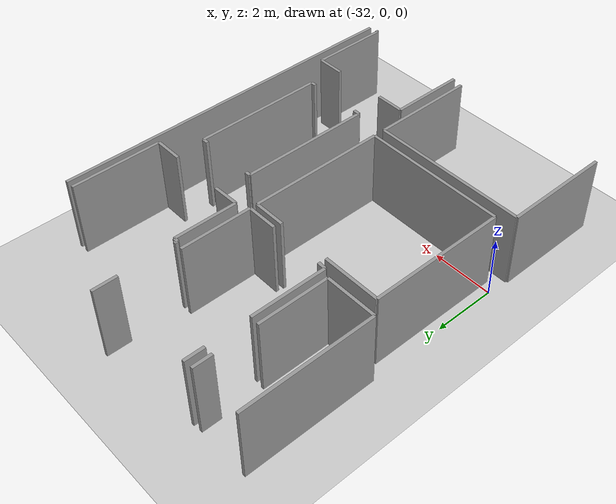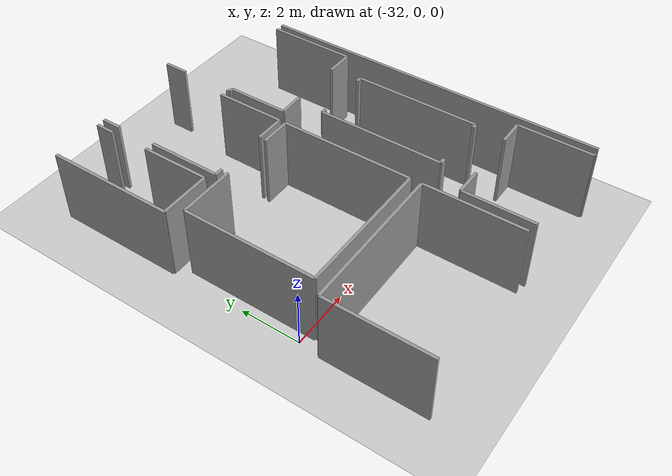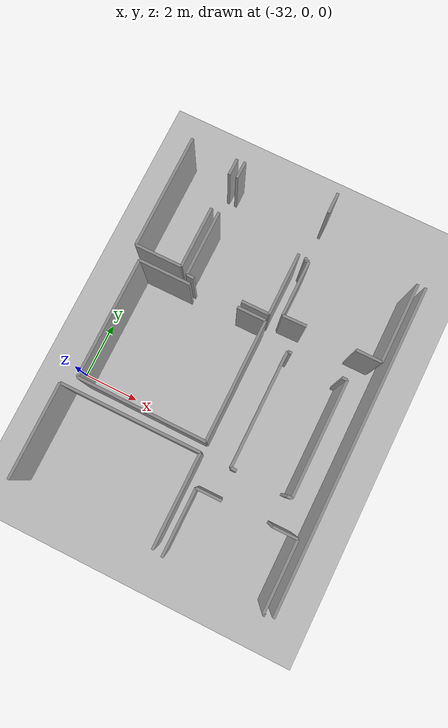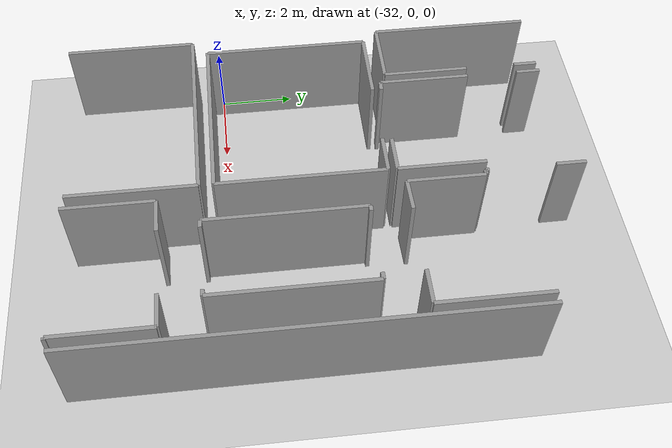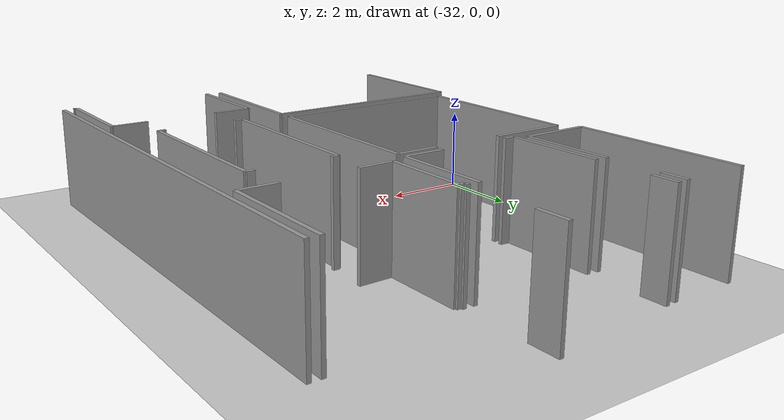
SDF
<sdf version="1.6">
 <world name="default">
  <model name="ground_plane">
   <static>1</static>
   <link name="link">
    <collision name="collision">
     <geometry><plane><normal>0 0 1</normal><size>100 100</size></plane></geometry>
     <surface><friction><ode><mu>100</mu><mu2>50</mu2></ode></friction></surface>
    </collision>
    <visual name="visual">
     <cast_shadows>0</cast_shadows>
     <geometry><plane><normal>0 0 1</normal><size>100 100</size></plane></geometry>
     <material>
      <script><uri>file://media/materials/scripts/gazebo.material</uri><name>Gazebo/Grey</name></script>
     </material>
    </visual>
   </link>
  </model>
  <model name="50045228">
   <static>1</static>
   <link name="Wall_145">
    <collision name="Wall_145_Collision">
     <geometry><box><size>11.6705464464 0.1 2.5</size></box></geometry>
     <pose>5.83527322318 0 1.25 0 0 0</pose>
    </collision>
    <visual name="Wall_145_Visual">
     <pose>5.83527322318 0 1.25 0 0 0</pose>
     <geometry><box><size>11.6705464464 0.1 2.5</size></box></geometry>
     <material>
      <script><uri>file://media/materials/scripts/gazebo.material</uri><name>Gazebo/Grey</name></script>
      <ambient>1 1 1 1</ambient>
     </material>
    </visual>
    <pose>24.1986616346 -32.8070787479 0 0 0 1.57079632679</pose>
   </link>
   <link name="Wall_375">
    <collision name="Wall_375_Collision">
     <geometry><box><size>2.37505946529 0.1 2.5</size></box></geometry>
     <pose>1.18752973264 0 1.25 0 0 0</pose>
    </collision>
    <visual name="Wall_375_Visual">
     <pose>1.18752973264 0 1.25 0 0 0</pose>
     <geometry><box><size>2.37505946529 0.1 2.5</size></box></geometry>
     <material>
      <script><uri>file://media/materials/scripts/gazebo.material</uri><name>Gazebo/Grey</name></script>
      <ambient>1 1 1 1</ambient>
     </material>
    </visual>
    <pose>20.2983730297 -32.7119342869 0 0 0 1.57079632679</pose>
   </link>
   <link name="Wall_376">
    <collision name="Wall_376_Collision">
     <geometry><box><size>0.911357077162 0.1 2.5</size></box></geometry>
     <pose>0.455678538581 0 1.25 0 0 0</pose>
    </collision>
    <visual name="Wall_376_Visual">
     <pose>0.455678538581 0 1.25 0 0 0</pose>
     <geometry><box><size>0.911357077162 0.1 2.5</size></box></geometry>
     <material>
      <script><uri>file://media/materials/scripts/gazebo.material</uri><name>Gazebo/Grey</name></script>
      <ambient>1 1 1 1</ambient>
     </material>
    </visual>
    <pose>20.2983730297 -30.3368748216 0 0 0 0.0</pose>
   </link>
   <link name="Wall_377">
    <collision name="Wall_377_Collision">
     <geometry><box><size>0.875329041261 0.1 2.5</size></box></geometry>
     <pose>0.43766452063 0 1.25 0 0 0</pose>
    </collision>
    <visual name="Wall_377_Visual">
     <pose>0.43766452063 0 1.25 0 0 0</pose>
     <geometry><box><size>0.875329041261 0.1 2.5</size></box></geometry>
     <material>
      <script><uri>file://media/materials/scripts/gazebo.material</uri><name>Gazebo/Grey</name></script>
      <ambient>1 1 1 1</ambient>
     </material>
    </visual>
    <pose>22.9869017792 -30.3368748216 0 0 0 0.0</pose>
   </link>
   <link name="Wall_378">
    <collision name="Wall_378_Collision">
     <geometry><box><size>2.50369477657 0.1 2.5</size></box></geometry>
     <pose>1.25184738828 0 1.25 0 0 0</pose>
    </collision>
    <visual name="Wall_378_Visual">
     <pose>1.25184738828 0 1.25 0 0 0</pose>
     <geometry><box><size>2.50369477657 0.1 2.5</size></box></geometry>
     <material>
      <script><uri>file://media/materials/scripts/gazebo.material</uri><name>Gazebo/Grey</name></script>
      <ambient>1 1 1 1</ambient>
     </material>
    </visual>
    <pose>23.8622308205 -30.3368748216 0 0 0 -1.57079632679</pose>
   </link>
   <link name="Wall_379">
    <collision name="Wall_379_Collision">
     <geometry><box><size>0.0716754939583 0.1 2.5</size></box></geometry>
     <pose>0.0358377469792 0 1.25 0 0 0</pose>
    </collision>
    <visual name="Wall_379_Visual">
     <pose>0.0358377469792 0 1.25 0 0 0</pose>
     <geometry><box><size>0.0716754939583 0.1 2.5</size></box></geometry>
     <material>
      <script><uri>file://media/materials/scripts/gazebo.material</uri><name>Gazebo/Grey</name></script>
      <ambient>1 1 1 1</ambient>
     </material>
    </visual>
    <pose>23.8622308205 -32.8405695982 0 0 0 0.0</pose>
   </link>
   <link name="Wall_383">
    <collision name="Wall_383_Collision">
     <geometry><box><size>3.45387079382 0.1 2.5</size></box></geometry>
     <pose>1.72693539691 0 1.25 0 0 0</pose>
    </collision>
    <visual name="Wall_383_Visual">
     <pose>1.72693539691 0 1.25 0 0 0</pose>
     <geometry><box><size>3.45387079382 0.1 2.5</size></box></geometry>
     <material>
      <script><uri>file://media/materials/scripts/gazebo.material</uri><name>Gazebo/Grey</name></script>
      <ambient>1 1 1 1</ambient>
     </material>
    </visual>
    <pose>14.842535917 -32.7350226761 0 0 0 1.57079632679</pose>
   </link>
   <link name="Wall_384">
    <collision name="Wall_384_Collision">
     <geometry><box><size>5.08388569979 0.1 2.5</size></box></geometry>
     <pose>2.54194284989 0 1.25 0 0 0</pose>
    </collision>
    <visual name="Wall_384_Visual">
     <pose>2.54194284989 0 1.25 0 0 0</pose>
     <geometry><box><size>5.08388569979 0.1 2.5</size></box></geometry>
     <material>
      <script><uri>file://media/materials/scripts/gazebo.material</uri><name>Gazebo/Grey</name></script>
      <ambient>1 1 1 1</ambient>
     </material>
    </visual>
    <pose>14.842535917 -29.2811518823 0 0 0 0.0</pose>
   </link>
   <link name="Wall_385">
    <collision name="Wall_385_Collision">
     <geometry><box><size>3.34832387175 0.1 2.5</size></box></geometry>
     <pose>1.67416193587 0 1.25 0 0 0</pose>
    </collision>
    <visual name="Wall_385_Visual">
     <pose>1.67416193587 0 1.25 0 0 0</pose>
     <geometry><box><size>3.34832387175 0.1 2.5</size></box></geometry>
     <material>
      <script><uri>file://media/materials/scripts/gazebo.material</uri><name>Gazebo/Grey</name></script>
      <ambient>1 1 1 1</ambient>
     </material>
    </visual>
    <pose>19.9264216168 -29.2811518823 0 0 0 -1.57079632679</pose>
   </link>
   <link name="Wall_393">
    <collision name="Wall_393_Collision">
     <geometry><box><size>4.19295296692 0.1 2.5</size></box></geometry>
     <pose>2.09647648346 0 1.25 0 0 0</pose>
    </collision>
    <visual name="Wall_393_Visual">
     <pose>2.09647648346 0 1.25 0 0 0</pose>
     <geometry><box><size>4.19295296692 0.1 2.5</size></box></geometry>
     <material>
      <script><uri>file://media/materials/scripts/gazebo.material</uri><name>Gazebo/Grey</name></script>
      <ambient>1 1 1 1</ambient>
     </material>
    </visual>
    <pose>21.0082775681 -29.2817861787 0 0 0 1.57079632679</pose>
   </link>
   <link name="Wall_394">
    <collision name="Wall_394_Collision">
     <geometry><box><size>0.158447242396 0.1 2.5</size></box></geometry>
     <pose>0.0792236211982 0 1.25 0 0 0</pose>
    </collision>
    <visual name="Wall_394_Visual">
     <pose>0.0792236211982 0 1.25 0 0 0</pose>
     <geometry><box><size>0.158447242396 0.1 2.5</size></box></geometry>
     <material>
      <script><uri>file://media/materials/scripts/gazebo.material</uri><name>Gazebo/Grey</name></script>
      <ambient>1 1 1 1</ambient>
     </material>
    </visual>
    <pose>21.0082775681 -25.0888332118 0 0 0 0.0</pose>
   </link>
   <link name="Wall_395">
    <collision name="Wall_395_Collision">
     <geometry><box><size>0.189654625607 0.1 2.5</size></box></geometry>
     <pose>0.0948273128033 0 1.25 0 0 0</pose>
    </collision>
    <visual name="Wall_395_Visual">
     <pose>0.0948273128033 0 1.25 0 0 0</pose>
     <geometry><box><size>0.189654625607 0.1 2.5</size></box></geometry>
     <material>
      <script><uri>file://media/materials/scripts/gazebo.material</uri><name>Gazebo/Grey</name></script>
      <ambient>1 1 1 1</ambient>
     </material>
    </visual>
    <pose>22.9634328122 -25.0888332118 0 0 0 0.0</pose>
   </link>
   <link name="Wall_396">
    <collision name="Wall_396_Collision">
     <geometry><box><size>4.19815419746 0.1 2.5</size></box></geometry>
     <pose>2.09907709873 0 1.25 0 0 0</pose>
    </collision>
    <visual name="Wall_396_Visual">
     <pose>2.09907709873 0 1.25 0 0 0</pose>
     <geometry><box><size>4.19815419746 0.1 2.5</size></box></geometry>
     <material>
      <script><uri>file://media/materials/scripts/gazebo.material</uri><name>Gazebo/Grey</name></script>
      <ambient>1 1 1 1</ambient>
     </material>
    </visual>
    <pose>23.1530874378 -25.0888332118 0 0 0 -1.57079632679</pose>
   </link>
   <link name="Wall_397">
    <collision name="Wall_397_Collision">
     <geometry><box><size>0.167834829216 0.1 2.5</size></box></geometry>
     <pose>0.0839174146078 0 1.25 0 0 0</pose>
    </collision>
    <visual name="Wall_397_Visual">
     <pose>0.0839174146078 0 1.25 0 0 0</pose>
     <geometry><box><size>0.167834829216 0.1 2.5</size></box></geometry>
     <material>
      <script><uri>file://media/materials/scripts/gazebo.material</uri><name>Gazebo/Grey</name></script>
      <ambient>1 1 1 1</ambient>
     </material>
    </visual>
    <pose>23.1530874378 -29.2869874092 0 0 0 3.14159265359</pose>
   </link>
   <link name="Wall_398">
    <collision name="Wall_398_Collision">
     <geometry><box><size>0.208114226627 0.1 2.5</size></box></geometry>
     <pose>0.104057113314 0 1.25 0 0 0</pose>
    </collision>
    <visual name="Wall_398_Visual">
     <pose>0.104057113314 0 1.25 0 0 0</pose>
     <geometry><box><size>0.208114226627 0.1 2.5</size></box></geometry>
     <material>
      <script><uri>file://media/materials/scripts/gazebo.material</uri><name>Gazebo/Grey</name></script>
      <ambient>1 1 1 1</ambient>
     </material>
    </visual>
    <pose>21.2163267895 -29.2869874092 0 0 0 3.11659785997</pose>
   </link>
   <link name="Wall_399">
    <collision name="Wall_399_Collision">
     <geometry><box><size>2.0363451841 0.1 2.5</size></box></geometry>
     <pose>1.01817259205 0 1.25 0 0 0</pose>
    </collision>
    <visual name="Wall_399_Visual">
     <pose>1.01817259205 0 1.25 0 0 0</pose>
     <geometry><box><size>2.0363451841 0.1 2.5</size></box></geometry>
     <material>
      <script><uri>file://media/materials/scripts/gazebo.material</uri><name>Gazebo/Grey</name></script>
      <ambient>1 1 1 1</ambient>
     </material>
    </visual>
    <pose>20.3463258381 -24.0730709461 0 0 0 1.57079632679</pose>
   </link>
   <link name="Wall_400">
    <collision name="Wall_400_Collision">
     <geometry><box><size>0.140940661571 0.1 2.5</size></box></geometry>
     <pose>0.0704703307856 0 1.25 0 0 0</pose>
    </collision>
    <visual name="Wall_400_Visual">
     <pose>0.0704703307856 0 1.25 0 0 0</pose>
     <geometry><box><size>0.140940661571 0.1 2.5</size></box></geometry>
     <material>
      <script><uri>file://media/materials/scripts/gazebo.material</uri><name>Gazebo/Grey</name></script>
      <ambient>1 1 1 1</ambient>
     </material>
    </visual>
    <pose>20.3463258381 -22.0367257619 0 0 0 3.14159265359</pose>
   </link>
   <link name="Wall_401">
    <collision name="Wall_401_Collision">
     <geometry><box><size>0.0994576765723 0.1 2.5</size></box></geometry>
     <pose>0.0497288382861 0 1.25 0 0 0</pose>
    </collision>
    <visual name="Wall_401_Visual">
     <pose>0.0497288382861 0 1.25 0 0 0</pose>
     <geometry><box><size>0.0994576765723 0.1 2.5</size></box></geometry>
     <material>
      <script><uri>file://media/materials/scripts/gazebo.material</uri><name>Gazebo/Grey</name></script>
      <ambient>1 1 1 1</ambient>
     </material>
    </visual>
    <pose>20.2053851765 -22.0367257619 0 0 0 1.57079632679</pose>
   </link>
   <link name="Wall_402">
    <collision name="Wall_402_Collision">
     <geometry><box><size>0.775744505407 0.1 2.5</size></box></geometry>
     <pose>0.387872252704 0 1.25 0 0 0</pose>
    </collision>
    <visual name="Wall_402_Visual">
     <pose>0.387872252704 0 1.25 0 0 0</pose>
     <geometry><box><size>0.775744505407 0.1 2.5</size></box></geometry>
     <material>
      <script><uri>file://media/materials/scripts/gazebo.material</uri><name>Gazebo/Grey</name></script>
      <ambient>1 1 1 1</ambient>
     </material>
    </visual>
    <pose>20.2053851765 -20.1939678412 0 0 0 1.57079632679</pose>
   </link>
   <link name="Wall_405">
    <collision name="Wall_405_Collision">
     <geometry><box><size>2.91611430021 0.1 2.5</size></box></geometry>
     <pose>1.45805715011 0 1.25 0 0 0</pose>
    </collision>
    <visual name="Wall_405_Visual">
     <pose>1.45805715011 0 1.25 0 0 0</pose>
     <geometry><box><size>2.91611430021 0.1 2.5</size></box></geometry>
     <material>
      <script><uri>file://media/materials/scripts/gazebo.material</uri><name>Gazebo/Grey</name></script>
      <ambient>1 1 1 1</ambient>
     </material>
    </visual>
    <pose>23.912974533 -21.1378008944 0 0 0 -1.57079632679</pose>
   </link>
   <link name="Wall_406">
    <collision name="Wall_406_Collision">
     <geometry><box><size>0.919095493324 0.1 2.5</size></box></geometry>
     <pose>0.459547746662 0 1.25 0 0 0</pose>
    </collision>
    <visual name="Wall_406_Visual">
     <pose>0.459547746662 0 1.25 0 0 0</pose>
     <geometry><box><size>0.919095493324 0.1 2.5</size></box></geometry>
     <material>
      <script><uri>file://media/materials/scripts/gazebo.material</uri><name>Gazebo/Grey</name></script>
      <ambient>1 1 1 1</ambient>
     </material>
    </visual>
    <pose>23.912974533 -24.0539151946 0 0 0 3.14159265359</pose>
   </link>
   <link name="Wall_407">
    <collision name="Wall_407_Collision">
     <geometry><box><size>0.863109428146 0.1 2.5</size></box></geometry>
     <pose>0.431554714073 0 1.25 0 0 0</pose>
    </collision>
    <visual name="Wall_407_Visual">
     <pose>0.431554714073 0 1.25 0 0 0</pose>
     <geometry><box><size>0.863109428146 0.1 2.5</size></box></geometry>
     <material>
      <script><uri>file://media/materials/scripts/gazebo.material</uri><name>Gazebo/Grey</name></script>
      <ambient>1 1 1 1</ambient>
     </material>
    </visual>
    <pose>21.2092226698 -24.0539151946 0 0 0 -3.11939694608</pose>
   </link>
   <link name="Wall_408">
    <collision name="Wall_408_Collision">
     <geometry><box><size>2.41058006406 0.1 2.5</size></box></geometry>
     <pose>1.20529003203 0 1.25 0 0 0</pose>
    </collision>
    <visual name="Wall_408_Visual">
     <pose>1.20529003203 0 1.25 0 0 0</pose>
     <geometry><box><size>2.41058006406 0.1 2.5</size></box></geometry>
     <material>
      <script><uri>file://media/materials/scripts/gazebo.material</uri><name>Gazebo/Grey</name></script>
      <ambient>1 1 1 1</ambient>
     </material>
    </visual>
    <pose>16.8872538137 -24.222764898 0 0 0 1.57079632679</pose>
   </link>
   <link name="Wall_409">
    <collision name="Wall_409_Collision">
     <geometry><box><size>0.638355903714 0.1 2.5</size></box></geometry>
     <pose>0.319177951857 0 1.25 0 0 0</pose>
    </collision>
    <visual name="Wall_409_Visual">
     <pose>0.319177951857 0 1.25 0 0 0</pose>
     <geometry><box><size>0.638355903714 0.1 2.5</size></box></geometry>
     <material>
      <script><uri>file://media/materials/scripts/gazebo.material</uri><name>Gazebo/Grey</name></script>
      <ambient>1 1 1 1</ambient>
     </material>
    </visual>
    <pose>16.8872538137 -20.4395674099 0 0 0 1.57079632679</pose>
   </link>
   <link name="Wall_412">
    <collision name="Wall_412_Collision">
     <geometry><box><size>2.30503314199 0.1 2.5</size></box></geometry>
     <pose>1.15251657099 0 1.25 0 0 0</pose>
    </collision>
    <visual name="Wall_412_Visual">
     <pose>1.15251657099 0 1.25 0 0 0</pose>
     <geometry><box><size>2.30503314199 0.1 2.5</size></box></geometry>
     <material>
      <script><uri>file://media/materials/scripts/gazebo.material</uri><name>Gazebo/Grey</name></script>
      <ambient>1 1 1 1</ambient>
     </material>
    </visual>
    <pose>19.9264216168 -21.9346040405 0 0 0 -1.57079632679</pose>
   </link>
   <link name="Wall_413">
    <collision name="Wall_413_Collision">
     <geometry><box><size>1.00066601123 0.1 2.5</size></box></geometry>
     <pose>0.500333005614 0 1.25 0 0 0</pose>
    </collision>
    <visual name="Wall_413_Visual">
     <pose>0.500333005614 0 1.25 0 0 0</pose>
     <geometry><box><size>1.00066601123 0.1 2.5</size></box></geometry>
     <material>
      <script><uri>file://media/materials/scripts/gazebo.material</uri><name>Gazebo/Grey</name></script>
      <ambient>1 1 1 1</ambient>
     </material>
    </visual>
    <pose>19.9264216168 -24.2396371825 0 0 0 3.14159265359</pose>
   </link>
   <link name="Wall_414">
    <collision name="Wall_414_Collision">
     <geometry><box><size>0.268963965655 0.1 2.5</size></box></geometry>
     <pose>0.134481982827 0 1.25 0 0 0</pose>
    </collision>
    <visual name="Wall_414_Visual">
     <pose>0.134481982827 0 1.25 0 0 0</pose>
     <geometry><box><size>0.268963965655 0.1 2.5</size></box></geometry>
     <material>
      <script><uri>file://media/materials/scripts/gazebo.material</uri><name>Gazebo/Grey</name></script>
      <ambient>1 1 1 1</ambient>
     </material>
    </visual>
    <pose>17.155688053 -24.2396371825 0 0 0 3.07882078821</pose>
   </link>
   <link name="Wall_415">
    <collision name="Wall_415_Collision">
     <geometry><box><size>1.69877263645 0.1 2.5</size></box></geometry>
     <pose>0.849386318227 0 1.25 0 0 0</pose>
    </collision>
    <visual name="Wall_415_Visual">
     <pose>0.849386318227 0 1.25 0 0 0</pose>
     <geometry><box><size>1.69877263645 0.1 2.5</size></box></geometry>
     <material>
      <script><uri>file://media/materials/scripts/gazebo.material</uri><name>Gazebo/Grey</name></script>
      <ambient>1 1 1 1</ambient>
     </material>
    </visual>
    <pose>14.8993688751 -24.0582284101 0 0 0 0.0</pose>
   </link>
   <link name="Wall_416">
    <collision name="Wall_416_Collision">
     <geometry><box><size>2.27243030668 0.1 2.5</size></box></geometry>
     <pose>1.13621515334 0 1.25 0 0 0</pose>
    </collision>
    <visual name="Wall_416_Visual">
     <pose>1.13621515334 0 1.25 0 0 0</pose>
     <geometry><box><size>2.27243030668 0.1 2.5</size></box></geometry>
     <material>
      <script><uri>file://media/materials/scripts/gazebo.material</uri><name>Gazebo/Grey</name></script>
      <ambient>1 1 1 1</ambient>
     </material>
    </visual>
    <pose>16.5981415115 -24.0582284101 0 0 0 1.57079632679</pose>
   </link>
   <link name="Wall_417">
    <collision name="Wall_417_Collision">
     <geometry><box><size>0.618058418699 0.1 2.5</size></box></geometry>
     <pose>0.30902920935 0 1.25 0 0 0</pose>
    </collision>
    <visual name="Wall_417_Visual">
     <pose>0.30902920935 0 1.25 0 0 0</pose>
     <geometry><box><size>0.618058418699 0.1 2.5</size></box></geometry>
     <material>
      <script><uri>file://media/materials/scripts/gazebo.material</uri><name>Gazebo/Grey</name></script>
      <ambient>1 1 1 1</ambient>
     </material>
    </visual>
    <pose>16.5981415115 -20.4442612033 0 0 0 1.57079632679</pose>
   </link>
   <link name="Wall_419">
    <collision name="Wall_419_Collision">
     <geometry><box><size>4.23202569402 0.1 2.5</size></box></geometry>
     <pose>2.11601284701 0 1.25 0 0 0</pose>
    </collision>
    <visual name="Wall_419_Visual">
     <pose>2.11601284701 0 1.25 0 0 0</pose>
     <geometry><box><size>4.23202569402 0.1 2.5</size></box></geometry>
     <material>
      <script><uri>file://media/materials/scripts/gazebo.material</uri><name>Gazebo/Grey</name></script>
      <ambient>1 1 1 1</ambient>
     </material>
    </visual>
    <pose>14.8986077194 -19.8262027846 0 0 0 -1.57061647068</pose>
   </link>
   <link name="Wall_420">
    <collision name="Wall_420_Collision">
     <geometry><box><size>4.39034600869 0.1 2.5</size></box></geometry>
     <pose>2.19517300434 0 1.25 0 0 0</pose>
    </collision>
    <visual name="Wall_420_Visual">
     <pose>2.19517300434 0 1.25 0 0 0</pose>
     <geometry><box><size>4.39034600869 0.1 2.5</size></box></geometry>
     <material>
      <script><uri>file://media/materials/scripts/gazebo.material</uri><name>Gazebo/Grey</name></script>
      <ambient>1 1 1 1</ambient>
     </material>
    </visual>
    <pose>15.2553360185 -28.8677174844 0 0 0 1.57079632679</pose>
   </link>
   <link name="Wall_421">
    <collision name="Wall_421_Collision">
     <geometry><box><size>1.88221115727 0.1 2.5</size></box></geometry>
     <pose>0.941105578637 0 1.25 0 0 0</pose>
    </collision>
    <visual name="Wall_421_Visual">
     <pose>0.941105578637 0 1.25 0 0 0</pose>
     <geometry><box><size>1.88221115727 0.1 2.5</size></box></geometry>
     <material>
      <script><uri>file://media/materials/scripts/gazebo.material</uri><name>Gazebo/Grey</name></script>
      <ambient>1 1 1 1</ambient>
     </material>
    </visual>
    <pose>15.2553360185 -24.4773714757 0 0 0 0.0</pose>
   </link>
   <link name="Wall_422">
    <collision name="Wall_422_Collision">
     <geometry><box><size>1.03428372078 0.1 2.5</size></box></geometry>
     <pose>0.517141860391 0 1.25 0 0 0</pose>
    </collision>
    <visual name="Wall_422_Visual">
     <pose>0.517141860391 0 1.25 0 0 0</pose>
     <geometry><box><size>1.03428372078 0.1 2.5</size></box></geometry>
     <material>
      <script><uri>file://media/materials/scripts/gazebo.material</uri><name>Gazebo/Grey</name></script>
      <ambient>1 1 1 1</ambient>
     </material>
    </visual>
    <pose>18.8892201326 -24.4773714757 0 0 0 0.0</pose>
   </link>
   <link name="Wall_423">
    <collision name="Wall_423_Collision">
     <geometry><box><size>4.42244140687 0.1 2.5</size></box></geometry>
     <pose>2.21122070343 0 1.25 0 0 0</pose>
    </collision>
    <visual name="Wall_423_Visual">
     <pose>2.21122070343 0 1.25 0 0 0</pose>
     <geometry><box><size>4.42244140687 0.1 2.5</size></box></geometry>
     <material>
      <script><uri>file://media/materials/scripts/gazebo.material</uri><name>Gazebo/Grey</name></script>
      <ambient>1 1 1 1</ambient>
     </material>
    </visual>
    <pose>19.9235038534 -24.4773714757 0 0 0 -1.57079632679</pose>
   </link>
   <link name="Wall_424">
    <collision name="Wall_424_Collision">
     <geometry><box><size>4.66827816745 0.1 2.5</size></box></geometry>
     <pose>2.33413908373 0 1.25 0 0 0</pose>
    </collision>
    <visual name="Wall_424_Visual">
     <pose>2.33413908373 0 1.25 0 0 0</pose>
     <geometry><box><size>4.66827816745 0.1 2.5</size></box></geometry>
     <material>
      <script><uri>file://media/materials/scripts/gazebo.material</uri><name>Gazebo/Grey</name></script>
      <ambient>1 1 1 1</ambient>
     </material>
    </visual>
    <pose>19.9235038534 -28.8998128826 0 0 0 3.13471738826</pose>
   </link>
   <pose>-46.9 28.5754781009 0 0 0 0</pose>
  </model>
 </world>
</sdf>
